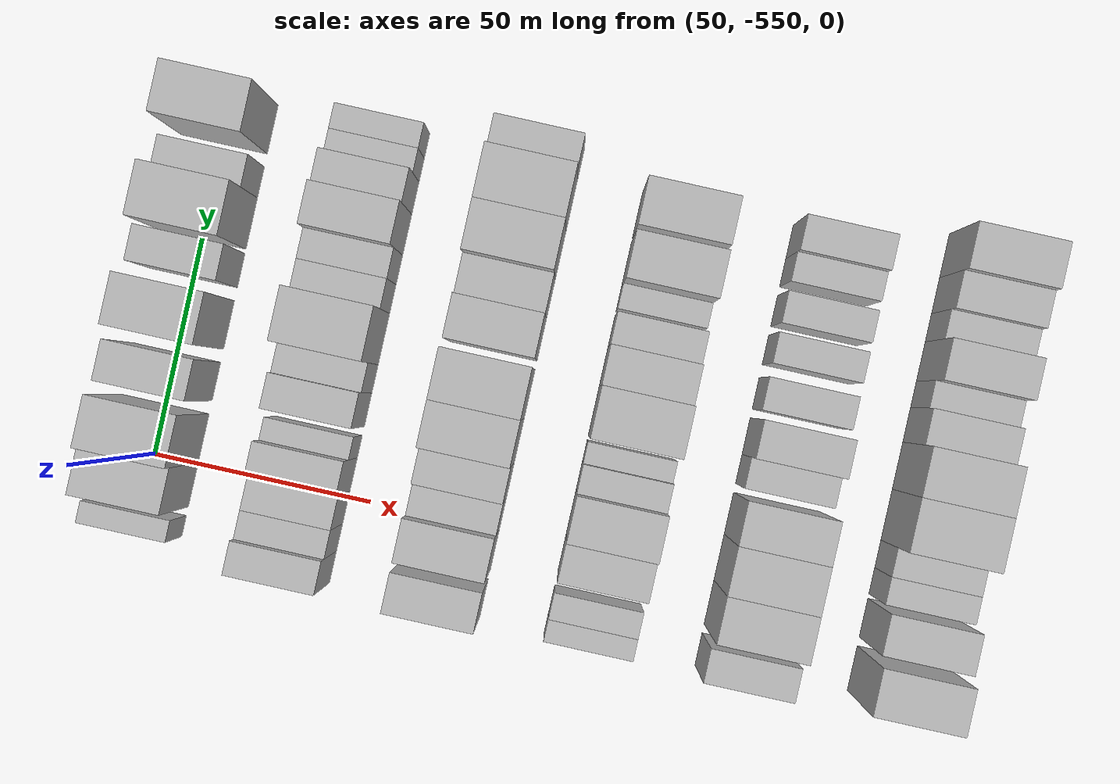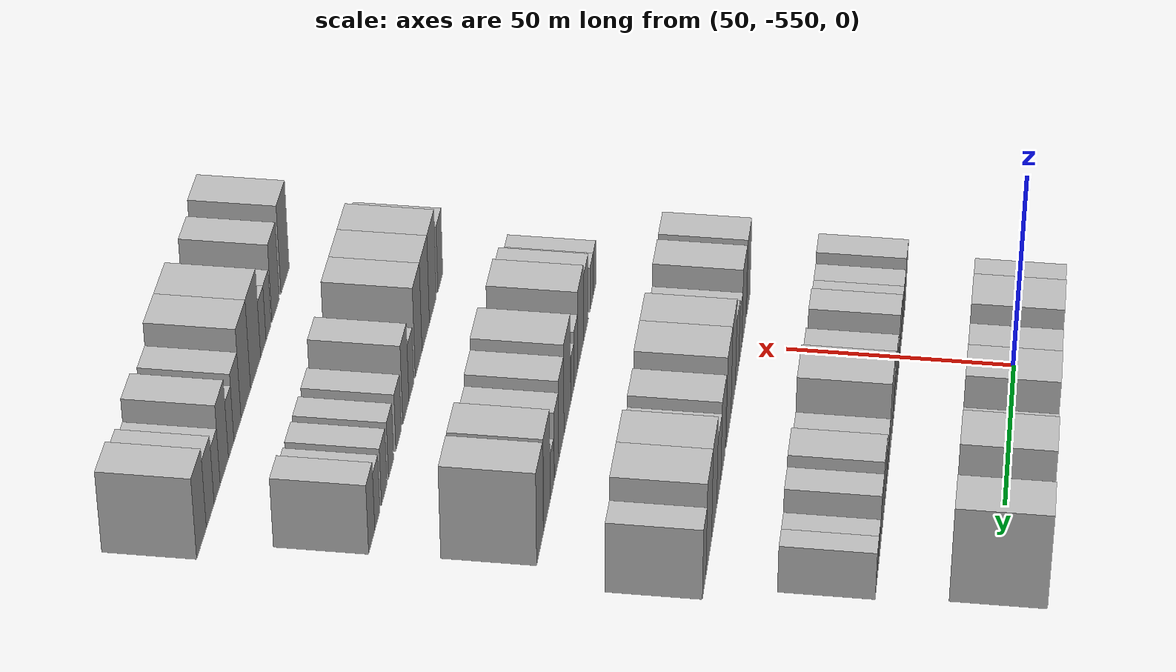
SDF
<sdf version="1.6">
 <world name="default">
  <model name="building_1">
   <static>1</static>
   <pose>50.0000 -564.5468 0 0.000000 0.000000 0.000000</pose>
   <link name="link">
    <pose>0 0 6.00 0 0 0</pose>
    <collision name="collision"><geometry><box><size>20.0000 4.9063 12.0000</size></box></geometry></collision>
    <visual name="visual">
     <cast_shadows>0</cast_shadows>
     <geometry><box><size>20.0000 4.9063 12.0000</size></box></geometry>
     <material>
      <script>
       <uri>model://HANNAS_wall/materials/scripts</uri>
       <uri>model://HANNAS_wall/materials/textures</uri>
       <name>vrc/HANNAS_wall</name>
      </script>
     </material>
    </visual>
   </link>
  </model>
  <model name="building_2">
   <static>1</static>
   <pose>50.0000 -554.9758 0 0.000000 0.000000 0.000000</pose>
   <link name="link">
    <pose>0 0 10.50 0 0 0</pose>
    <collision name="collision"><geometry><box><size>20.0000 10.2358 21.0000</size></box></geometry></collision>
    <visual name="visual">
     <cast_shadows>0</cast_shadows>
     <geometry><box><size>20.0000 10.2358 21.0000</size></box></geometry>
     <material>
      <script>
       <uri>model://HANNAS_wall/materials/scripts</uri>
       <uri>model://HANNAS_wall/materials/textures</uri>
       <name>vrc/HANNAS_wall</name>
      </script>
     </material>
    </visual>
   </link>
  </model>
  <model name="building_3">
   <static>1</static>
   <pose>50.0000 -544.1538 0 0.000000 0.000000 0.000000</pose>
   <link name="link">
    <pose>0 0 12.00 0 0 0</pose>
    <collision name="collision"><geometry><box><size>20.0000 11.4081 24.0000</size></box></geometry></collision>
    <visual name="visual">
     <cast_shadows>0</cast_shadows>
     <geometry><box><size>20.0000 11.4081 24.0000</size></box></geometry>
     <material>
      <script>
       <uri>model://HANNAS_wall/materials/scripts</uri>
       <uri>model://HANNAS_wall/materials/textures</uri>
       <name>vrc/HANNAS_wall</name>
      </script>
     </material>
    </visual>
   </link>
  </model>
  <model name="building_4">
   <static>1</static>
   <pose>50.0000 -530.9648 0 0.000000 0.000000 0.000000</pose>
   <link name="link">
    <pose>0 0 10.50 0 0 0</pose>
    <collision name="collision"><geometry><box><size>20.0000 8.9697 21.0000</size></box></geometry></collision>
    <visual name="visual">
     <cast_shadows>0</cast_shadows>
     <geometry><box><size>20.0000 8.9697 21.0000</size></box></geometry>
     <material>
      <script>
       <uri>model://HANNAS_wall/materials/scripts</uri>
       <uri>model://HANNAS_wall/materials/textures</uri>
       <name>vrc/HANNAS_wall</name>
      </script>
     </material>
    </visual>
   </link>
  </model>
  <model name="building_5">
   <static>1</static>
   <pose>50.0000 -517.8318 0 0.000000 0.000000 0.000000</pose>
   <link name="link">
    <pose>0 0 12.00 0 0 0</pose>
    <collision name="collision"><geometry><box><size>20.0000 11.2964 24.0000</size></box></geometry></collision>
    <visual name="visual">
     <cast_shadows>0</cast_shadows>
     <geometry><box><size>20.0000 11.2964 24.0000</size></box></geometry>
     <material>
      <script>
       <uri>model://HANNAS_wall/materials/scripts</uri>
       <uri>model://HANNAS_wall/materials/textures</uri>
       <name>vrc/HANNAS_wall</name>
      </script>
     </material>
    </visual>
   </link>
  </model>
  <model name="building_6">
   <static>1</static>
   <pose>50.0000 -505.1996 0 0.000000 0.000000 0.000000</pose>
   <link name="link">
    <pose>0 0 9.00 0 0 0</pose>
    <collision name="collision"><geometry><box><size>20.0000 7.9679 18.0000</size></box></geometry></collision>
    <visual name="visual">
     <cast_shadows>0</cast_shadows>
     <geometry><box><size>20.0000 7.9679 18.0000</size></box></geometry>
     <material>
      <script>
       <uri>model://HANNAS_wall/materials/scripts</uri>
       <uri>model://HANNAS_wall/materials/textures</uri>
       <name>vrc/HANNAS_wall</name>
      </script>
     </material>
    </visual>
   </link>
  </model>
  <model name="building_7">
   <static>1</static>
   <pose>50.0000 -494.2581 0 0.000000 0.000000 0.000000</pose>
   <link name="link">
    <pose>0 0 12.00 0 0 0</pose>
    <collision name="collision"><geometry><box><size>20.0000 11.9151 24.0000</size></box></geometry></collision>
    <visual name="visual">
     <cast_shadows>0</cast_shadows>
     <geometry><box><size>20.0000 11.9151 24.0000</size></box></geometry>
     <material>
      <script>
       <uri>model://HANNAS_wall/materials/scripts</uri>
       <uri>model://HANNAS_wall/materials/textures</uri>
       <name>vrc/HANNAS_wall</name>
      </script>
     </material>
    </visual>
   </link>
  </model>
  <model name="building_8">
   <static>1</static>
   <pose>50.0000 -484.6999 0 0.000000 0.000000 0.000000</pose>
   <link name="link">
    <pose>0 0 7.50 0 0 0</pose>
    <collision name="collision"><geometry><box><size>20.0000 7.2013 15.0000</size></box></geometry></collision>
    <visual name="visual">
     <cast_shadows>0</cast_shadows>
     <geometry><box><size>20.0000 7.2013 15.0000</size></box></geometry>
     <material>
      <script>
       <uri>model://HANNAS_wall/materials/scripts</uri>
       <uri>model://HANNAS_wall/materials/textures</uri>
       <name>vrc/HANNAS_wall</name>
      </script>
     </material>
    </visual>
   </link>
  </model>
  <model name="building_9">
   <static>1</static>
   <pose>50.0000 -472.4553 0 0.000000 0.000000 0.000000</pose>
   <link name="link">
    <pose>0 0 12.00 0 0 0</pose>
    <collision name="collision"><geometry><box><size>20.0000 11.2879 24.0000</size></box></geometry></collision>
    <visual name="visual">
     <cast_shadows>0</cast_shadows>
     <geometry><box><size>20.0000 11.2879 24.0000</size></box></geometry>
     <material>
      <script>
       <uri>model://HANNAS_wall/materials/scripts</uri>
       <uri>model://HANNAS_wall/materials/textures</uri>
       <name>vrc/HANNAS_wall</name>
      </script>
     </material>
    </visual>
   </link>
  </model>
  <model name="building_124">
   <static>1</static>
   <pose>85.0000 -566.2635 0 0.000000 0.000000 0.000000</pose>
   <link name="link">
    <pose>0 0 9.00 0 0 0</pose>
    <collision name="collision"><geometry><box><size>20.0000 7.4731 18.0000</size></box></geometry></collision>
    <visual name="visual">
     <cast_shadows>0</cast_shadows>
     <geometry><box><size>20.0000 7.4731 18.0000</size></box></geometry>
     <material>
      <script>
       <uri>model://HANNAS_wall/materials/scripts</uri>
       <uri>model://HANNAS_wall/materials/textures</uri>
       <name>vrc/HANNAS_wall</name>
      </script>
     </material>
    </visual>
   </link>
  </model>
  <model name="building_125">
   <static>1</static>
   <pose>85.0000 -559.3374 0 0.000000 0.000000 0.000000</pose>
   <link name="link">
    <pose>0 0 7.50 0 0 0</pose>
    <collision name="collision"><geometry><box><size>20.0000 6.3791 15.0000</size></box></geometry></collision>
    <visual name="visual">
     <cast_shadows>0</cast_shadows>
     <geometry><box><size>20.0000 6.3791 15.0000</size></box></geometry>
     <material>
      <script>
       <uri>model://HANNAS_wall/materials/scripts</uri>
       <uri>model://HANNAS_wall/materials/textures</uri>
       <name>vrc/HANNAS_wall</name>
      </script>
     </material>
    </visual>
   </link>
  </model>
  <model name="building_126">
   <static>1</static>
   <pose>85.0000 -552.4116 0 0.000000 0.000000 0.000000</pose>
   <link name="link">
    <pose>0 0 7.50 0 0 0</pose>
    <collision name="collision"><geometry><box><size>20.0000 7.4724 15.0000</size></box></geometry></collision>
    <visual name="visual">
     <cast_shadows>0</cast_shadows>
     <geometry><box><size>20.0000 7.4724 15.0000</size></box></geometry>
     <material>
      <script>
       <uri>model://HANNAS_wall/materials/scripts</uri>
       <uri>model://HANNAS_wall/materials/textures</uri>
       <name>vrc/HANNAS_wall</name>
      </script>
     </material>
    </visual>
   </link>
  </model>
  <model name="building_127">
   <static>1</static>
   <pose>85.0000 -544.7323 0 0.000000 0.000000 0.000000</pose>
   <link name="link">
    <pose>0 0 9.00 0 0 0</pose>
    <collision name="collision"><geometry><box><size>20.0000 7.8861 18.0000</size></box></geometry></collision>
    <visual name="visual">
     <cast_shadows>0</cast_shadows>
     <geometry><box><size>20.0000 7.8861 18.0000</size></box></geometry>
     <material>
      <script>
       <uri>model://HANNAS_wall/materials/scripts</uri>
       <uri>model://HANNAS_wall/materials/textures</uri>
       <name>vrc/HANNAS_wall</name>
      </script>
     </material>
    </visual>
   </link>
  </model>
  <model name="building_128">
   <static>1</static>
   <pose>85.0000 -538.2182 0 0.000000 0.000000 0.000000</pose>
   <link name="link">
    <pose>0 0 6.00 0 0 0</pose>
    <collision name="collision"><geometry><box><size>20.0000 5.1420 12.0000</size></box></geometry></collision>
    <visual name="visual">
     <cast_shadows>0</cast_shadows>
     <geometry><box><size>20.0000 5.1420 12.0000</size></box></geometry>
     <material>
      <script>
       <uri>model://HANNAS_wall/materials/scripts</uri>
       <uri>model://HANNAS_wall/materials/textures</uri>
       <name>vrc/HANNAS_wall</name>
      </script>
     </material>
    </visual>
   </link>
  </model>
  <model name="building_129">
   <static>1</static>
   <pose>85.0000 -529.7284 0 0.000000 0.000000 0.000000</pose>
   <link name="link">
    <pose>0 0 9.00 0 0 0</pose>
    <collision name="collision"><geometry><box><size>20.0000 7.8377 18.0000</size></box></geometry></collision>
    <visual name="visual">
     <cast_shadows>0</cast_shadows>
     <geometry><box><size>20.0000 7.8377 18.0000</size></box></geometry>
     <material>
      <script>
       <uri>model://HANNAS_wall/materials/scripts</uri>
       <uri>model://HANNAS_wall/materials/textures</uri>
       <name>vrc/HANNAS_wall</name>
      </script>
     </material>
    </visual>
   </link>
  </model>
  <model name="building_130">
   <static>1</static>
   <pose>85.0000 -522.5025 0 0.000000 0.000000 0.000000</pose>
   <link name="link">
    <pose>0 0 7.50 0 0 0</pose>
    <collision name="collision"><geometry><box><size>20.0000 6.6141 15.0000</size></box></geometry></collision>
    <visual name="visual">
     <cast_shadows>0</cast_shadows>
     <geometry><box><size>20.0000 6.6141 15.0000</size></box></geometry>
     <material>
      <script>
       <uri>model://HANNAS_wall/materials/scripts</uri>
       <uri>model://HANNAS_wall/materials/textures</uri>
       <name>vrc/HANNAS_wall</name>
      </script>
     </material>
    </visual>
   </link>
  </model>
  <model name="building_131">
   <static>1</static>
   <pose>85.0000 -513.2523 0 0.000000 0.000000 0.000000</pose>
   <link name="link">
    <pose>0 0 12.00 0 0 0</pose>
    <collision name="collision"><geometry><box><size>20.0000 11.8865 24.0000</size></box></geometry></collision>
    <visual name="visual">
     <cast_shadows>0</cast_shadows>
     <geometry><box><size>20.0000 11.8865 24.0000</size></box></geometry>
     <material>
      <script>
       <uri>model://HANNAS_wall/materials/scripts</uri>
       <uri>model://HANNAS_wall/materials/textures</uri>
       <name>vrc/HANNAS_wall</name>
      </script>
     </material>
    </visual>
   </link>
  </model>
  <model name="building_132">
   <static>1</static>
   <pose>85.0000 -503.9702 0 0.000000 0.000000 0.000000</pose>
   <link name="link">
    <pose>0 0 7.50 0 0 0</pose>
    <collision name="collision"><geometry><box><size>20.0000 6.6778 15.0000</size></box></geometry></collision>
    <visual name="visual">
     <cast_shadows>0</cast_shadows>
     <geometry><box><size>20.0000 6.6778 15.0000</size></box></geometry>
     <material>
      <script>
       <uri>model://HANNAS_wall/materials/scripts</uri>
       <uri>model://HANNAS_wall/materials/textures</uri>
       <name>vrc/HANNAS_wall</name>
      </script>
     </material>
    </visual>
   </link>
  </model>
  <model name="building_133">
   <static>1</static>
   <pose>85.0000 -497.2161 0 0.000000 0.000000 0.000000</pose>
   <link name="link">
    <pose>0 0 7.50 0 0 0</pose>
    <collision name="collision"><geometry><box><size>20.0000 6.8303 15.0000</size></box></geometry></collision>
    <visual name="visual">
     <cast_shadows>0</cast_shadows>
     <geometry><box><size>20.0000 6.8303 15.0000</size></box></geometry>
     <material>
      <script>
       <uri>model://HANNAS_wall/materials/scripts</uri>
       <uri>model://HANNAS_wall/materials/textures</uri>
       <name>vrc/HANNAS_wall</name>
      </script>
     </material>
    </visual>
   </link>
  </model>
  <model name="building_134">
   <static>1</static>
   <pose>85.0000 -489.0742 0 0.000000 0.000000 0.000000</pose>
   <link name="link">
    <pose>0 0 10.50 0 0 0</pose>
    <collision name="collision"><geometry><box><size>20.0000 9.4535 21.0000</size></box></geometry></collision>
    <visual name="visual">
     <cast_shadows>0</cast_shadows>
     <geometry><box><size>20.0000 9.4535 21.0000</size></box></geometry>
     <material>
      <script>
       <uri>model://HANNAS_wall/materials/scripts</uri>
       <uri>model://HANNAS_wall/materials/textures</uri>
       <name>vrc/HANNAS_wall</name>
      </script>
     </material>
    </visual>
   </link>
  </model>
  <model name="building_135">
   <static>1</static>
   <pose>85.0000 -480.5725 0 0.000000 0.000000 0.000000</pose>
   <link name="link">
    <pose>0 0 9.00 0 0 0</pose>
    <collision name="collision"><geometry><box><size>20.0000 7.5499 18.0000</size></box></geometry></collision>
    <visual name="visual">
     <cast_shadows>0</cast_shadows>
     <geometry><box><size>20.0000 7.5499 18.0000</size></box></geometry>
     <material>
      <script>
       <uri>model://HANNAS_wall/materials/scripts</uri>
       <uri>model://HANNAS_wall/materials/textures</uri>
       <name>vrc/HANNAS_wall</name>
      </script>
     </material>
    </visual>
   </link>
  </model>
  <model name="building_136">
   <static>1</static>
   <pose>85.0000 -474.0536 0 0.000000 0.000000 0.000000</pose>
   <link name="link">
    <pose>0 0 6.00 0 0 0</pose>
    <collision name="collision"><geometry><box><size>20.0000 5.4880 12.0000</size></box></geometry></collision>
    <visual name="visual">
     <cast_shadows>0</cast_shadows>
     <geometry><box><size>20.0000 5.4880 12.0000</size></box></geometry>
     <material>
      <script>
       <uri>model://HANNAS_wall/materials/scripts</uri>
       <uri>model://HANNAS_wall/materials/textures</uri>
       <name>vrc/HANNAS_wall</name>
      </script>
     </material>
    </visual>
   </link>
  </model>
  <model name="building_137">
   <static>1</static>
   <pose>85.0000 -468.4602 0 0.000000 0.000000 0.000000</pose>
   <link name="link">
    <pose>0 0 6.00 0 0 0</pose>
    <collision name="collision"><geometry><box><size>20.0000 5.6988 12.0000</size></box></geometry></collision>
    <visual name="visual">
     <cast_shadows>0</cast_shadows>
     <geometry><box><size>20.0000 5.6988 12.0000</size></box></geometry>
     <material>
      <script>
       <uri>model://HANNAS_wall/materials/scripts</uri>
       <uri>model://HANNAS_wall/materials/textures</uri>
       <name>vrc/HANNAS_wall</name>
      </script>
     </material>
    </visual>
   </link>
  </model>
  <model name="building_249">
   <static>1</static>
   <pose>120.0000 -565.5564 0 0.000000 0.000000 0.000000</pose>
   <link name="link">
    <pose>0 0 10.50 0 0 0</pose>
    <collision name="collision"><geometry><box><size>20.0000 8.8873 21.0000</size></box></geometry></collision>
    <visual name="visual">
     <cast_shadows>0</cast_shadows>
     <geometry><box><size>20.0000 8.8873 21.0000</size></box></geometry>
     <material>
      <script>
       <uri>model://HANNAS_wall/materials/scripts</uri>
       <uri>model://HANNAS_wall/materials/textures</uri>
       <name>vrc/HANNAS_wall</name>
      </script>
     </material>
    </visual>
   </link>
  </model>
  <model name="building_250">
   <static>1</static>
   <pose>120.0000 -554.2955 0 0.000000 0.000000 0.000000</pose>
   <link name="link">
    <pose>0 0 10.50 0 0 0</pose>
    <collision name="collision"><geometry><box><size>20.0000 9.6345 21.0000</size></box></geometry></collision>
    <visual name="visual">
     <cast_shadows>0</cast_shadows>
     <geometry><box><size>20.0000 9.6345 21.0000</size></box></geometry>
     <material>
      <script>
       <uri>model://HANNAS_wall/materials/scripts</uri>
       <uri>model://HANNAS_wall/materials/textures</uri>
       <name>vrc/HANNAS_wall</name>
      </script>
     </material>
    </visual>
   </link>
  </model>
  <model name="building_251">
   <static>1</static>
   <pose>120.0000 -545.8975 0 0.000000 0.000000 0.000000</pose>
   <link name="link">
    <pose>0 0 7.50 0 0 0</pose>
    <collision name="collision"><geometry><box><size>20.0000 7.1614 15.0000</size></box></geometry></collision>
    <visual name="visual">
     <cast_shadows>0</cast_shadows>
     <geometry><box><size>20.0000 7.1614 15.0000</size></box></geometry>
     <material>
      <script>
       <uri>model://HANNAS_wall/materials/scripts</uri>
       <uri>model://HANNAS_wall/materials/textures</uri>
       <name>vrc/HANNAS_wall</name>
      </script>
     </material>
    </visual>
   </link>
  </model>
  <model name="building_252">
   <static>1</static>
   <pose>120.0000 -538.2327 0 0.000000 0.000000 0.000000</pose>
   <link name="link">
    <pose>0 0 9.00 0 0 0</pose>
    <collision name="collision"><geometry><box><size>20.0000 8.1682 18.0000</size></box></geometry></collision>
    <visual name="visual">
     <cast_shadows>0</cast_shadows>
     <geometry><box><size>20.0000 8.1682 18.0000</size></box></geometry>
     <material>
      <script>
       <uri>model://HANNAS_wall/materials/scripts</uri>
       <uri>model://HANNAS_wall/materials/textures</uri>
       <name>vrc/HANNAS_wall</name>
      </script>
     </material>
    </visual>
   </link>
  </model>
  <model name="building_253">
   <static>1</static>
   <pose>120.0000 -529.0199 0 0.000000 0.000000 0.000000</pose>
   <link name="link">
    <pose>0 0 12.00 0 0 0</pose>
    <collision name="collision"><geometry><box><size>20.0000 10.2574 24.0000</size></box></geometry></collision>
    <visual name="visual">
     <cast_shadows>0</cast_shadows>
     <geometry><box><size>20.0000 10.2574 24.0000</size></box></geometry>
     <material>
      <script>
       <uri>model://HANNAS_wall/materials/scripts</uri>
       <uri>model://HANNAS_wall/materials/textures</uri>
       <name>vrc/HANNAS_wall</name>
      </script>
     </material>
    </visual>
   </link>
  </model>
  <model name="building_254">
   <static>1</static>
   <pose>120.0000 -518.2237 0 0.000000 0.000000 0.000000</pose>
   <link name="link">
    <pose>0 0 12.00 0 0 0</pose>
    <collision name="collision"><geometry><box><size>20.0000 11.3351 24.0000</size></box></geometry></collision>
    <visual name="visual">
     <cast_shadows>0</cast_shadows>
     <geometry><box><size>20.0000 11.3351 24.0000</size></box></geometry>
     <material>
      <script>
       <uri>model://HANNAS_wall/materials/scripts</uri>
       <uri>model://HANNAS_wall/materials/textures</uri>
       <name>vrc/HANNAS_wall</name>
      </script>
     </material>
    </visual>
   </link>
  </model>
  <model name="building_255">
   <static>1</static>
   <pose>120.0000 -505.6805 0 0.000000 0.000000 0.000000</pose>
   <link name="link">
    <pose>0 0 10.50 0 0 0</pose>
    <collision name="collision"><geometry><box><size>20.0000 9.7513 21.0000</size></box></geometry></collision>
    <visual name="visual">
     <cast_shadows>0</cast_shadows>
     <geometry><box><size>20.0000 9.7513 21.0000</size></box></geometry>
     <material>
      <script>
       <uri>model://HANNAS_wall/materials/scripts</uri>
       <uri>model://HANNAS_wall/materials/textures</uri>
       <name>vrc/HANNAS_wall</name>
      </script>
     </material>
    </visual>
   </link>
  </model>
  <model name="building_256">
   <static>1</static>
   <pose>120.0000 -496.3070 0 0.000000 0.000000 0.000000</pose>
   <link name="link">
    <pose>0 0 9.00 0 0 0</pose>
    <collision name="collision"><geometry><box><size>20.0000 8.9957 18.0000</size></box></geometry></collision>
    <visual name="visual">
     <cast_shadows>0</cast_shadows>
     <geometry><box><size>20.0000 8.9957 18.0000</size></box></geometry>
     <material>
      <script>
       <uri>model://HANNAS_wall/materials/scripts</uri>
       <uri>model://HANNAS_wall/materials/textures</uri>
       <name>vrc/HANNAS_wall</name>
      </script>
     </material>
    </visual>
   </link>
  </model>
  <model name="building_257">
   <static>1</static>
   <pose>120.0000 -486.2618 0 0.000000 0.000000 0.000000</pose>
   <link name="link">
    <pose>0 0 12.00 0 0 0</pose>
    <collision name="collision"><geometry><box><size>20.0000 11.0946 24.0000</size></box></geometry></collision>
    <visual name="visual">
     <cast_shadows>0</cast_shadows>
     <geometry><box><size>20.0000 11.0946 24.0000</size></box></geometry>
     <material>
      <script>
       <uri>model://HANNAS_wall/materials/scripts</uri>
       <uri>model://HANNAS_wall/materials/textures</uri>
       <name>vrc/HANNAS_wall</name>
      </script>
     </material>
    </visual>
   </link>
  </model>
  <model name="building_258">
   <static>1</static>
   <pose>120.0000 -474.7993 0 0.000000 0.000000 0.000000</pose>
   <link name="link">
    <pose>0 0 12.00 0 0 0</pose>
    <collision name="collision"><geometry><box><size>20.0000 11.8305 24.0000</size></box></geometry></collision>
    <visual name="visual">
     <cast_shadows>0</cast_shadows>
     <geometry><box><size>20.0000 11.8305 24.0000</size></box></geometry>
     <material>
      <script>
       <uri>model://HANNAS_wall/materials/scripts</uri>
       <uri>model://HANNAS_wall/materials/textures</uri>
       <name>vrc/HANNAS_wall</name>
      </script>
     </material>
    </visual>
   </link>
  </model>
  <model name="building_259">
   <static>1</static>
   <pose>120.0000 -465.1584 0 0.000000 0.000000 0.000000</pose>
   <link name="link">
    <pose>0 0 9.00 0 0 0</pose>
    <collision name="collision"><geometry><box><size>20.0000 7.4514 18.0000</size></box></geometry></collision>
    <visual name="visual">
     <cast_shadows>0</cast_shadows>
     <geometry><box><size>20.0000 7.4514 18.0000</size></box></geometry>
     <material>
      <script>
       <uri>model://HANNAS_wall/materials/scripts</uri>
       <uri>model://HANNAS_wall/materials/textures</uri>
       <name>vrc/HANNAS_wall</name>
      </script>
     </material>
    </visual>
   </link>
  </model>
  <model name="building_381">
   <static>1</static>
   <pose>155.0000 -567.5345 0 0.000000 0.000000 0.000000</pose>
   <link name="link">
    <pose>0 0 6.00 0 0 0</pose>
    <collision name="collision"><geometry><box><size>20.0000 4.9310 12.0000</size></box></geometry></collision>
    <visual name="visual">
     <cast_shadows>0</cast_shadows>
     <geometry><box><size>20.0000 4.9310 12.0000</size></box></geometry>
     <material>
      <script>
       <uri>model://HANNAS_wall/materials/scripts</uri>
       <uri>model://HANNAS_wall/materials/textures</uri>
       <name>vrc/HANNAS_wall</name>
      </script>
     </material>
    </visual>
   </link>
  </model>
  <model name="building_382">
   <static>1</static>
   <pose>155.0000 -562.0803 0 0.000000 0.000000 0.000000</pose>
   <link name="link">
    <pose>0 0 6.00 0 0 0</pose>
    <collision name="collision"><geometry><box><size>20.0000 5.9774 12.0000</size></box></geometry></collision>
    <visual name="visual">
     <cast_shadows>0</cast_shadows>
     <geometry><box><size>20.0000 5.9774 12.0000</size></box></geometry>
     <material>
      <script>
       <uri>model://HANNAS_wall/materials/scripts</uri>
       <uri>model://HANNAS_wall/materials/textures</uri>
       <name>vrc/HANNAS_wall</name>
      </script>
     </material>
    </visual>
   </link>
  </model>
  <model name="building_383">
   <static>1</static>
   <pose>155.0000 -551.6386 0 0.000000 0.000000 0.000000</pose>
   <link name="link">
    <pose>0 0 9.00 0 0 0</pose>
    <collision name="collision"><geometry><box><size>20.0000 8.9060 18.0000</size></box></geometry></collision>
    <visual name="visual">
     <cast_shadows>0</cast_shadows>
     <geometry><box><size>20.0000 8.9060 18.0000</size></box></geometry>
     <material>
      <script>
       <uri>model://HANNAS_wall/materials/scripts</uri>
       <uri>model://HANNAS_wall/materials/textures</uri>
       <name>vrc/HANNAS_wall</name>
      </script>
     </material>
    </visual>
   </link>
  </model>
  <model name="building_384">
   <static>1</static>
   <pose>155.0000 -542.0118 0 0.000000 0.000000 0.000000</pose>
   <link name="link">
    <pose>0 0 10.50 0 0 0</pose>
    <collision name="collision"><geometry><box><size>20.0000 10.3477 21.0000</size></box></geometry></collision>
    <visual name="visual">
     <cast_shadows>0</cast_shadows>
     <geometry><box><size>20.0000 10.3477 21.0000</size></box></geometry>
     <material>
      <script>
       <uri>model://HANNAS_wall/materials/scripts</uri>
       <uri>model://HANNAS_wall/materials/textures</uri>
       <name>vrc/HANNAS_wall</name>
      </script>
     </material>
    </visual>
   </link>
  </model>
  <model name="building_385">
   <static>1</static>
   <pose>155.0000 -533.5873 0 0.000000 0.000000 0.000000</pose>
   <link name="link">
    <pose>0 0 7.50 0 0 0</pose>
    <collision name="collision"><geometry><box><size>20.0000 6.5011 15.0000</size></box></geometry></collision>
    <visual name="visual">
     <cast_shadows>0</cast_shadows>
     <geometry><box><size>20.0000 6.5011 15.0000</size></box></geometry>
     <material>
      <script>
       <uri>model://HANNAS_wall/materials/scripts</uri>
       <uri>model://HANNAS_wall/materials/textures</uri>
       <name>vrc/HANNAS_wall</name>
      </script>
     </material>
    </visual>
   </link>
  </model>
  <model name="building_386">
   <static>1</static>
   <pose>155.0000 -527.8855 0 0.000000 0.000000 0.000000</pose>
   <link name="link">
    <pose>0 0 6.00 0 0 0</pose>
    <collision name="collision"><geometry><box><size>20.0000 4.9026 12.0000</size></box></geometry></collision>
    <visual name="visual">
     <cast_shadows>0</cast_shadows>
     <geometry><box><size>20.0000 4.9026 12.0000</size></box></geometry>
     <material>
      <script>
       <uri>model://HANNAS_wall/materials/scripts</uri>
       <uri>model://HANNAS_wall/materials/textures</uri>
       <name>vrc/HANNAS_wall</name>
      </script>
     </material>
    </visual>
   </link>
  </model>
  <model name="building_387">
   <static>1</static>
   <pose>155.0000 -518.7130 0 0.000000 0.000000 0.000000</pose>
   <link name="link">
    <pose>0 0 12.00 0 0 0</pose>
    <collision name="collision"><geometry><box><size>20.0000 11.4424 24.0000</size></box></geometry></collision>
    <visual name="visual">
     <cast_shadows>0</cast_shadows>
     <geometry><box><size>20.0000 11.4424 24.0000</size></box></geometry>
     <material>
      <script>
       <uri>model://HANNAS_wall/materials/scripts</uri>
       <uri>model://HANNAS_wall/materials/textures</uri>
       <name>vrc/HANNAS_wall</name>
      </script>
     </material>
    </visual>
   </link>
  </model>
  <model name="building_388">
   <static>1</static>
   <pose>155.0000 -508.5298 0 0.000000 0.000000 0.000000</pose>
   <link name="link">
    <pose>0 0 10.50 0 0 0</pose>
    <collision name="collision"><geometry><box><size>20.0000 8.9241 21.0000</size></box></geometry></collision>
    <visual name="visual">
     <cast_shadows>0</cast_shadows>
     <geometry><box><size>20.0000 8.9241 21.0000</size></box></geometry>
     <material>
      <script>
       <uri>model://HANNAS_wall/materials/scripts</uri>
       <uri>model://HANNAS_wall/materials/textures</uri>
       <name>vrc/HANNAS_wall</name>
      </script>
     </material>
    </visual>
   </link>
  </model>
  <model name="building_389">
   <static>1</static>
   <pose>155.0000 -500.4399 0 0.000000 0.000000 0.000000</pose>
   <link name="link">
    <pose>0 0 9.00 0 0 0</pose>
    <collision name="collision"><geometry><box><size>20.0000 7.2556 18.0000</size></box></geometry></collision>
    <visual name="visual">
     <cast_shadows>0</cast_shadows>
     <geometry><box><size>20.0000 7.2556 18.0000</size></box></geometry>
     <material>
      <script>
       <uri>model://HANNAS_wall/materials/scripts</uri>
       <uri>model://HANNAS_wall/materials/textures</uri>
       <name>vrc/HANNAS_wall</name>
      </script>
     </material>
    </visual>
   </link>
  </model>
  <model name="building_390">
   <static>1</static>
   <pose>155.0000 -492.9600 0 0.000000 0.000000 0.000000</pose>
   <link name="link">
    <pose>0 0 6.00 0 0 0</pose>
    <collision name="collision"><geometry><box><size>20.0000 5.7042 12.0000</size></box></geometry></collision>
    <visual name="visual">
     <cast_shadows>0</cast_shadows>
     <geometry><box><size>20.0000 5.7042 12.0000</size></box></geometry>
     <material>
      <script>
       <uri>model://HANNAS_wall/materials/scripts</uri>
       <uri>model://HANNAS_wall/materials/textures</uri>
       <name>vrc/HANNAS_wall</name>
      </script>
     </material>
    </visual>
   </link>
  </model>
  <model name="building_391">
   <static>1</static>
   <pose>155.0000 -484.9161 0 0.000000 0.000000 0.000000</pose>
   <link name="link">
    <pose>0 0 12.00 0 0 0</pose>
    <collision name="collision"><geometry><box><size>20.0000 10.3836 24.0000</size></box></geometry></collision>
    <visual name="visual">
     <cast_shadows>0</cast_shadows>
     <geometry><box><size>20.0000 10.3836 24.0000</size></box></geometry>
     <material>
      <script>
       <uri>model://HANNAS_wall/materials/scripts</uri>
       <uri>model://HANNAS_wall/materials/textures</uri>
       <name>vrc/HANNAS_wall</name>
      </script>
     </material>
    </visual>
   </link>
  </model>
  <model name="building_392">
   <static>1</static>
   <pose>155.0000 -473.4883 0 0.000000 0.000000 0.000000</pose>
   <link name="link">
    <pose>0 0 12.00 0 0 0</pose>
    <collision name="collision"><geometry><box><size>20.0000 10.4720 24.0000</size></box></geometry></collision>
    <visual name="visual">
     <cast_shadows>0</cast_shadows>
     <geometry><box><size>20.0000 10.4720 24.0000</size></box></geometry>
     <material>
      <script>
       <uri>model://HANNAS_wall/materials/scripts</uri>
       <uri>model://HANNAS_wall/materials/textures</uri>
       <name>vrc/HANNAS_wall</name>
      </script>
     </material>
    </visual>
   </link>
  </model>
  <model name="building_506">
   <static>1</static>
   <pose>190.0000 -566.2287 0 0.000000 0.000000 0.000000</pose>
   <link name="link">
    <pose>0 0 9.00 0 0 0</pose>
    <collision name="collision"><geometry><box><size>20.0000 7.5425 18.0000</size></box></geometry></collision>
    <visual name="visual">
     <cast_shadows>0</cast_shadows>
     <geometry><box><size>20.0000 7.5425 18.0000</size></box></geometry>
     <material>
      <script>
       <uri>model://HANNAS_wall/materials/scripts</uri>
       <uri>model://HANNAS_wall/materials/textures</uri>
       <name>vrc/HANNAS_wall</name>
      </script>
     </material>
    </visual>
   </link>
  </model>
  <model name="building_507">
   <static>1</static>
   <pose>190.0000 -555.3232 0 0.000000 0.000000 0.000000</pose>
   <link name="link">
    <pose>0 0 12.00 0 0 0</pose>
    <collision name="collision"><geometry><box><size>20.0000 10.2686 24.0000</size></box></geometry></collision>
    <visual name="visual">
     <cast_shadows>0</cast_shadows>
     <geometry><box><size>20.0000 10.2686 24.0000</size></box></geometry>
     <material>
      <script>
       <uri>model://HANNAS_wall/materials/scripts</uri>
       <uri>model://HANNAS_wall/materials/textures</uri>
       <name>vrc/HANNAS_wall</name>
      </script>
     </material>
    </visual>
   </link>
  </model>
  <model name="building_508">
   <static>1</static>
   <pose>190.0000 -544.8473 0 0.000000 0.000000 0.000000</pose>
   <link name="link">
    <pose>0 0 12.00 0 0 0</pose>
    <collision name="collision"><geometry><box><size>20.0000 10.6830 24.0000</size></box></geometry></collision>
    <visual name="visual">
     <cast_shadows>0</cast_shadows>
     <geometry><box><size>20.0000 10.6830 24.0000</size></box></geometry>
     <material>
      <script>
       <uri>model://HANNAS_wall/materials/scripts</uri>
       <uri>model://HANNAS_wall/materials/textures</uri>
       <name>vrc/HANNAS_wall</name>
      </script>
     </material>
    </visual>
   </link>
  </model>
  <model name="building_509">
   <static>1</static>
   <pose>190.0000 -534.6593 0 0.000000 0.000000 0.000000</pose>
   <link name="link">
    <pose>0 0 12.00 0 0 0</pose>
    <collision name="collision"><geometry><box><size>20.0000 9.6930 24.0000</size></box></geometry></collision>
    <visual name="visual">
     <cast_shadows>0</cast_shadows>
     <geometry><box><size>20.0000 9.6930 24.0000</size></box></geometry>
     <material>
      <script>
       <uri>model://HANNAS_wall/materials/scripts</uri>
       <uri>model://HANNAS_wall/materials/textures</uri>
       <name>vrc/HANNAS_wall</name>
      </script>
     </material>
    </visual>
   </link>
  </model>
  <model name="building_510">
   <static>1</static>
   <pose>190.0000 -524.3948 0 0.000000 0.000000 0.000000</pose>
   <link name="link">
    <pose>0 0 7.50 0 0 0</pose>
    <collision name="collision"><geometry><box><size>20.0000 6.8361 15.0000</size></box></geometry></collision>
    <visual name="visual">
     <cast_shadows>0</cast_shadows>
     <geometry><box><size>20.0000 6.8361 15.0000</size></box></geometry>
     <material>
      <script>
       <uri>model://HANNAS_wall/materials/scripts</uri>
       <uri>model://HANNAS_wall/materials/textures</uri>
       <name>vrc/HANNAS_wall</name>
      </script>
     </material>
    </visual>
   </link>
  </model>
  <model name="building_511">
   <static>1</static>
   <pose>190.0000 -516.7536 0 0.000000 0.000000 0.000000</pose>
   <link name="link">
    <pose>0 0 10.50 0 0 0</pose>
    <collision name="collision"><geometry><box><size>20.0000 8.4463 21.0000</size></box></geometry></collision>
    <visual name="visual">
     <cast_shadows>0</cast_shadows>
     <geometry><box><size>20.0000 8.4463 21.0000</size></box></geometry>
     <material>
      <script>
       <uri>model://HANNAS_wall/materials/scripts</uri>
       <uri>model://HANNAS_wall/materials/textures</uri>
       <name>vrc/HANNAS_wall</name>
      </script>
     </material>
    </visual>
   </link>
  </model>
  <model name="building_512">
   <static>1</static>
   <pose>190.0000 -506.8583 0 0.000000 0.000000 0.000000</pose>
   <link name="link">
    <pose>0 0 7.50 0 0 0</pose>
    <collision name="collision"><geometry><box><size>20.0000 7.3443 15.0000</size></box></geometry></collision>
    <visual name="visual">
     <cast_shadows>0</cast_shadows>
     <geometry><box><size>20.0000 7.3443 15.0000</size></box></geometry>
     <material>
      <script>
       <uri>model://HANNAS_wall/materials/scripts</uri>
       <uri>model://HANNAS_wall/materials/textures</uri>
       <name>vrc/HANNAS_wall</name>
      </script>
     </material>
    </visual>
   </link>
  </model>
  <model name="building_513">
   <static>1</static>
   <pose>190.0000 -496.7459 0 0.000000 0.000000 0.000000</pose>
   <link name="link">
    <pose>0 0 7.50 0 0 0</pose>
    <collision name="collision"><geometry><box><size>20.0000 6.8805 15.0000</size></box></geometry></collision>
    <visual name="visual">
     <cast_shadows>0</cast_shadows>
     <geometry><box><size>20.0000 6.8805 15.0000</size></box></geometry>
     <material>
      <script>
       <uri>model://HANNAS_wall/materials/scripts</uri>
       <uri>model://HANNAS_wall/materials/textures</uri>
       <name>vrc/HANNAS_wall</name>
      </script>
     </material>
    </visual>
   </link>
  </model>
  <model name="building_514">
   <static>1</static>
   <pose>190.0000 -487.7324 0 0.000000 0.000000 0.000000</pose>
   <link name="link">
    <pose>0 0 7.50 0 0 0</pose>
    <collision name="collision"><geometry><box><size>20.0000 7.1465 15.0000</size></box></geometry></collision>
    <visual name="visual">
     <cast_shadows>0</cast_shadows>
     <geometry><box><size>20.0000 7.1465 15.0000</size></box></geometry>
     <material>
      <script>
       <uri>model://HANNAS_wall/materials/scripts</uri>
       <uri>model://HANNAS_wall/materials/textures</uri>
       <name>vrc/HANNAS_wall</name>
      </script>
     </material>
    </visual>
   </link>
  </model>
  <model name="building_515">
   <static>1</static>
   <pose>190.0000 -478.8929 0 0.000000 0.000000 0.000000</pose>
   <link name="link">
    <pose>0 0 7.50 0 0 0</pose>
    <collision name="collision"><geometry><box><size>20.0000 6.5325 15.0000</size></box></geometry></collision>
    <visual name="visual">
     <cast_shadows>0</cast_shadows>
     <geometry><box><size>20.0000 6.5325 15.0000</size></box></geometry>
     <material>
      <script>
       <uri>model://HANNAS_wall/materials/scripts</uri>
       <uri>model://HANNAS_wall/materials/textures</uri>
       <name>vrc/HANNAS_wall</name>
      </script>
     </material>
    </visual>
   </link>
  </model>
  <model name="building_516">
   <static>1</static>
   <pose>190.0000 -471.7135 0 0.000000 0.000000 0.000000</pose>
   <link name="link">
    <pose>0 0 9.00 0 0 0</pose>
    <collision name="collision"><geometry><box><size>20.0000 7.8262 18.0000</size></box></geometry></collision>
    <visual name="visual">
     <cast_shadows>0</cast_shadows>
     <geometry><box><size>20.0000 7.8262 18.0000</size></box></geometry>
     <material>
      <script>
       <uri>model://HANNAS_wall/materials/scripts</uri>
       <uri>model://HANNAS_wall/materials/textures</uri>
       <name>vrc/HANNAS_wall</name>
      </script>
     </material>
    </visual>
   </link>
  </model>
  <model name="building_628">
   <static>1</static>
   <pose>225.0000 -562.8069 0 0.000000 0.000000 0.000000</pose>
   <link name="link">
    <pose>0 0 12.00 0 0 0</pose>
    <collision name="collision"><geometry><box><size>20.0000 10.3862 24.0000</size></box></geometry></collision>
    <visual name="visual">
     <cast_shadows>0</cast_shadows>
     <geometry><box><size>20.0000 10.3862 24.0000</size></box></geometry>
     <material>
      <script>
       <uri>model://HANNAS_wall/materials/scripts</uri>
       <uri>model://HANNAS_wall/materials/textures</uri>
       <name>vrc/HANNAS_wall</name>
      </script>
     </material>
    </visual>
   </link>
  </model>
  <model name="building_629">
   <static>1</static>
   <pose>225.0000 -551.1081 0 0.000000 0.000000 0.000000</pose>
   <link name="link">
    <pose>0 0 10.50 0 0 0</pose>
    <collision name="collision"><geometry><box><size>20.0000 9.0114 21.0000</size></box></geometry></collision>
    <visual name="visual">
     <cast_shadows>0</cast_shadows>
     <geometry><box><size>20.0000 9.0114 21.0000</size></box></geometry>
     <material>
      <script>
       <uri>model://HANNAS_wall/materials/scripts</uri>
       <uri>model://HANNAS_wall/materials/textures</uri>
       <name>vrc/HANNAS_wall</name>
      </script>
     </material>
    </visual>
   </link>
  </model>
  <model name="building_630">
   <static>1</static>
   <pose>225.0000 -542.5449 0 0.000000 0.000000 0.000000</pose>
   <link name="link">
    <pose>0 0 7.50 0 0 0</pose>
    <collision name="collision"><geometry><box><size>20.0000 6.1150 15.0000</size></box></geometry></collision>
    <visual name="visual">
     <cast_shadows>0</cast_shadows>
     <geometry><box><size>20.0000 6.1150 15.0000</size></box></geometry>
     <material>
      <script>
       <uri>model://HANNAS_wall/materials/scripts</uri>
       <uri>model://HANNAS_wall/materials/textures</uri>
       <name>vrc/HANNAS_wall</name>
      </script>
     </material>
    </visual>
   </link>
  </model>
  <model name="building_631">
   <static>1</static>
   <pose>225.0000 -536.2785 0 0.000000 0.000000 0.000000</pose>
   <link name="link">
    <pose>0 0 7.50 0 0 0</pose>
    <collision name="collision"><geometry><box><size>20.0000 6.4178 15.0000</size></box></geometry></collision>
    <visual name="visual">
     <cast_shadows>0</cast_shadows>
     <geometry><box><size>20.0000 6.4178 15.0000</size></box></geometry>
     <material>
      <script>
       <uri>model://HANNAS_wall/materials/scripts</uri>
       <uri>model://HANNAS_wall/materials/textures</uri>
       <name>vrc/HANNAS_wall</name>
      </script>
     </material>
    </visual>
   </link>
  </model>
  <model name="building_632">
   <static>1</static>
   <pose>225.0000 -527.1546 0 0.000000 0.000000 0.000000</pose>
   <link name="link">
    <pose>0 0 12.00 0 0 0</pose>
    <collision name="collision"><geometry><box><size>20.0000 11.8300 24.0000</size></box></geometry></collision>
    <visual name="visual">
     <cast_shadows>0</cast_shadows>
     <geometry><box><size>20.0000 11.8300 24.0000</size></box></geometry>
     <material>
      <script>
       <uri>model://HANNAS_wall/materials/scripts</uri>
       <uri>model://HANNAS_wall/materials/textures</uri>
       <name>vrc/HANNAS_wall</name>
      </script>
     </material>
    </visual>
   </link>
  </model>
  <model name="building_633">
   <static>1</static>
   <pose>225.0000 -515.7767 0 0.000000 0.000000 0.000000</pose>
   <link name="link">
    <pose>0 0 12.00 0 0 0</pose>
    <collision name="collision"><geometry><box><size>20.0000 10.9256 24.0000</size></box></geometry></collision>
    <visual name="visual">
     <cast_shadows>0</cast_shadows>
     <geometry><box><size>20.0000 10.9256 24.0000</size></box></geometry>
     <material>
      <script>
       <uri>model://HANNAS_wall/materials/scripts</uri>
       <uri>model://HANNAS_wall/materials/textures</uri>
       <name>vrc/HANNAS_wall</name>
      </script>
     </material>
    </visual>
   </link>
  </model>
  <model name="building_634">
   <static>1</static>
   <pose>225.0000 -506.2856 0 0.000000 0.000000 0.000000</pose>
   <link name="link">
    <pose>0 0 9.00 0 0 0</pose>
    <collision name="collision"><geometry><box><size>20.0000 8.0566 18.0000</size></box></geometry></collision>
    <visual name="visual">
     <cast_shadows>0</cast_shadows>
     <geometry><box><size>20.0000 8.0566 18.0000</size></box></geometry>
     <material>
      <script>
       <uri>model://HANNAS_wall/materials/scripts</uri>
       <uri>model://HANNAS_wall/materials/textures</uri>
       <name>vrc/HANNAS_wall</name>
      </script>
     </material>
    </visual>
   </link>
  </model>
  <model name="building_635">
   <static>1</static>
   <pose>225.0000 -499.2146 0 0.000000 0.000000 0.000000</pose>
   <link name="link">
    <pose>0 0 7.50 0 0 0</pose>
    <collision name="collision"><geometry><box><size>20.0000 6.0854 15.0000</size></box></geometry></collision>
    <visual name="visual">
     <cast_shadows>0</cast_shadows>
     <geometry><box><size>20.0000 6.0854 15.0000</size></box></geometry>
     <material>
      <script>
       <uri>model://HANNAS_wall/materials/scripts</uri>
       <uri>model://HANNAS_wall/materials/textures</uri>
       <name>vrc/HANNAS_wall</name>
      </script>
     </material>
    </visual>
   </link>
  </model>
  <model name="building_636">
   <static>1</static>
   <pose>225.0000 -491.6022 0 0.000000 0.000000 0.000000</pose>
   <link name="link">
    <pose>0 0 10.50 0 0 0</pose>
    <collision name="collision"><geometry><box><size>20.0000 9.1395 21.0000</size></box></geometry></collision>
    <visual name="visual">
     <cast_shadows>0</cast_shadows>
     <geometry><box><size>20.0000 9.1395 21.0000</size></box></geometry>
     <material>
      <script>
       <uri>model://HANNAS_wall/materials/scripts</uri>
       <uri>model://HANNAS_wall/materials/textures</uri>
       <name>vrc/HANNAS_wall</name>
      </script>
     </material>
    </visual>
   </link>
  </model>
  <model name="building_637">
   <static>1</static>
   <pose>225.0000 -483.7489 0 0.000000 0.000000 0.000000</pose>
   <link name="link">
    <pose>0 0 7.50 0 0 0</pose>
    <collision name="collision"><geometry><box><size>20.0000 6.5671 15.0000</size></box></geometry></collision>
    <visual name="visual">
     <cast_shadows>0</cast_shadows>
     <geometry><box><size>20.0000 6.5671 15.0000</size></box></geometry>
     <material>
      <script>
       <uri>model://HANNAS_wall/materials/scripts</uri>
       <uri>model://HANNAS_wall/materials/textures</uri>
       <name>vrc/HANNAS_wall</name>
      </script>
     </material>
    </visual>
   </link>
  </model>
  <model name="building_638">
   <static>1</static>
   <pose>225.0000 -476.3024 0 0.000000 0.000000 0.000000</pose>
   <link name="link">
    <pose>0 0 9.00 0 0 0</pose>
    <collision name="collision"><geometry><box><size>20.0000 8.3260 18.0000</size></box></geometry></collision>
    <visual name="visual">
     <cast_shadows>0</cast_shadows>
     <geometry><box><size>20.0000 8.3260 18.0000</size></box></geometry>
     <material>
      <script>
       <uri>model://HANNAS_wall/materials/scripts</uri>
       <uri>model://HANNAS_wall/materials/textures</uri>
       <name>vrc/HANNAS_wall</name>
      </script>
     </material>
    </visual>
   </link>
  </model>
  <model name="building_639">
   <static>1</static>
   <pose>225.0000 -467.0352 0 0.000000 0.000000 0.000000</pose>
   <link name="link">
    <pose>0 0 10.50 0 0 0</pose>
    <collision name="collision"><geometry><box><size>20.0000 10.2084 21.0000</size></box></geometry></collision>
    <visual name="visual">
     <cast_shadows>0</cast_shadows>
     <geometry><box><size>20.0000 10.2084 21.0000</size></box></geometry>
     <material>
      <script>
       <uri>model://HANNAS_wall/materials/scripts</uri>
       <uri>model://HANNAS_wall/materials/textures</uri>
       <name>vrc/HANNAS_wall</name>
      </script>
     </material>
    </visual>
   </link>
  </model>
 </world>
</sdf>
